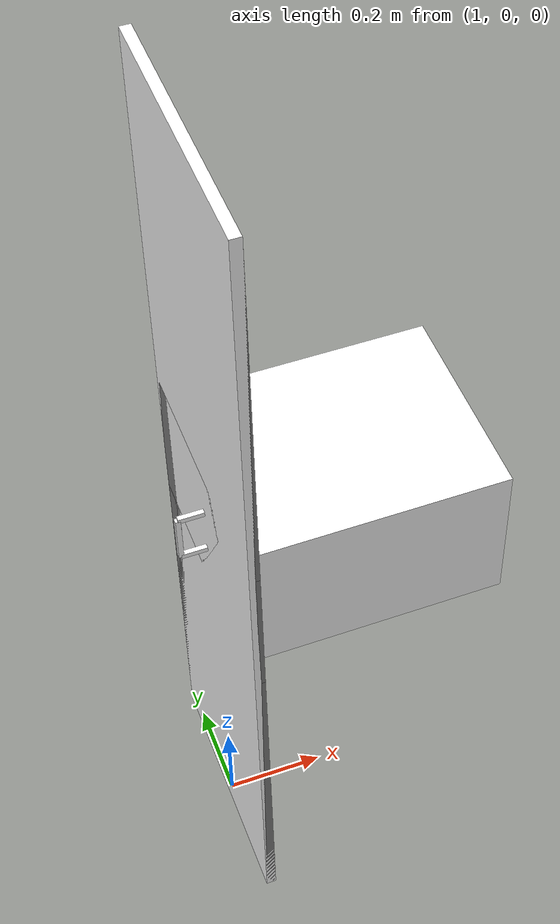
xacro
<?xml version="1.0"?>
<robot xmlns:xacro="http://www.ros.org/wiki/xacro" name="cube">

    <xacro:property name="mass_cube" value="0.5"/>
    <xacro:property name="dimension_cube" value="0.3"/>

    <link name="world"/>

    <joint name="world_wall" type="fixed">
        <parent link="world"/>
        <child link="wall"/>
        <origin rpy="0 0 0" xyz="1.0 0.0 0.9"/>
    </joint>

    <link name="wall">
        <visual>
            <origin rpy="0 0 0" xyz="0 0 0"/>
            <geometry>
                <box size="0.02 0.5 1.8"/>
            </geometry>
            <material name="">
                <color rgba="1 1 1 0.0"/>
            </material>
        </visual>
    </link>

    <joint name="wall_wall_down" type="fixed">
        <parent link="wall"/>
        <child link="wall_down"/>
        <origin rpy="0 0 0" xyz="0.0 0.0 -0.525"/>
    </joint>

    <link name="wall_down">
        <collision>
            <origin rpy="0 0 0" xyz="0 0 0.0"/>
            <geometry>
                <box size="0.02 0.5 0.75"/>
            </geometry>
        </collision>
        <visual>
            <origin rpy="0 0 0" xyz="0 0 0"/>
            <geometry>
                <box size="0.02 0.5 0.75"/>
            </geometry>
            <material name="">
                <color rgba="0.5 0.5 0.5 1"/>
            </material>
        </visual>
    </link>

    <joint name="wall_wall_top" type="fixed">
        <parent link="wall"/>
        <child link="wall_top"/>
        <origin rpy="0 0 0" xyz="0.0 0.0 0.525"/>
    </joint>

    <link name="wall_top">
        <collision>
            <origin rpy="0 0 0" xyz="0 0 0.0"/>
            <geometry>
                <box size="0.02 0.5 0.75"/>
            </geometry>
        </collision>
        <visual>
            <origin rpy="0 0 0" xyz="0 0 0"/>
            <geometry>
                <box size="0.02 0.5 0.75"/>
            </geometry>
            <material name="">
                <color rgba="0.5 0.5 0.5 1"/>
            </material>
        </visual>
    </link>

    <joint name="wall_wall_left" type="fixed">
        <parent link="wall"/>
        <child link="wall_left"/>
        <origin rpy="0 0 0" xyz="0.0 -0.225 0.0"/>
    </joint>

    <link name="wall_left">
        <collision>
            <origin rpy="0 0 0" xyz="0 0 0.0"/>
            <geometry>
                <box size="0.02 0.05 0.3"/>
            </geometry>
        </collision>
        <visual>
            <origin rpy="0 0 0" xyz="0 0 0"/>
            <geometry>
                <box size="0.02 0.05 0.3"/>
            </geometry>
            <material name="">
                <color rgba="0.5 0.5 0.5 1"/>
            </material>
        </visual>
    </link>

    <joint name="wall_wall_right" type="fixed">
        <parent link="wall"/>
        <child link="wall_right"/>
        <origin rpy="0 0 0" xyz="0.0 0.225 0.0"/>
    </joint>

    <link name="wall_right">
        <collision>
            <origin rpy="0 0 0" xyz="0 0 0.0"/>
            <geometry>
                <box size="0.02 0.05 0.3"/>
            </geometry>
        </collision>
        <visual>
            <origin rpy="0 0 0" xyz="0 0 0"/>
            <geometry>
                <box size="0.02 0.05 0.3"/>
            </geometry>
            <material name="">
                <color rgba="0.5 0.5 0.5 1"/>
            </material>
        </visual>
    </link>

    <joint name="articulation_joint" type="prismatic">
        <parent link="wall"/>
        <child link="drawer"/>
        <origin rpy="0 0 0" xyz="0.24 0.0 0.0"/>
        <axis xyz="1 0 0"/>
        <limit effort="1000.0" velocity="5.0" lower="-0.5" upper="0.0"/>
        <dynamics spring_mount="0 0 0" stiffness="0.0" damping="0.5"/>
    </joint>

    <link name="drawer">
        <inertial>
            <mass value="2.0"/>
            <origin rpy="0 0 0" xyz="0 0 0"/>
            <inertia ixx="0.12" ixy="0" ixz="0" iyy="0.14" iyz="0" izz="0.18"/>
        </inertial>
        <collision>
            <origin rpy="0 0 0" xyz="0 0 0.0"/>
            <geometry>
                <box size="0.5 0.4 0.3"/>
            </geometry>
        </collision>
        <visual>
            <origin rpy="0 0 0" xyz="0 0 0"/>
            <geometry>
                <box size="0.5 0.4 0.3"/>
            </geometry>
            <material name="">
                <color rgba="1 1 1 1"/>
            </material>
        </visual>
    </link>

    <joint name="drawer_handle" type="fixed">
        <parent link="drawer"/>
        <child link="handle"/>
        <origin rpy="1.5708 0 0" xyz="-0.3 0.0 0.0"/>
    </joint>

    <link name="handle">
        <collision>
            <origin rpy="0 0 0" xyz="0 0 0.0"/>
            <geometry>
                <box size="0.01 0.1 0.01"/>
            </geometry>
            <material name="">
                <contact name="rubber"/>
            </material>
        </collision>
        <visual>
            <origin rpy="0 0 0" xyz="0 0 0"/>
            <geometry>
                <box size="0.01 0.1 0.01"/>
            </geometry>
            <material name="">
                <color rgba="1 1 1 1"/>
            </material>
        </visual>
    </link>

    <joint name="handle_left" type="fixed">
        <parent link="handle"/>
        <child link="left"/>
        <origin rpy="0 0 0" xyz="0.05 0.05 0.0"/>
    </joint>

    <link name="left">
        <collision>
            <origin rpy="0 0 0" xyz="0 0 0.0"/>
            <geometry>
                <box size="0.1 0.01 0.01"/>
            </geometry>
            <material name="">
                <contact name="rubber"/>
            </material>
        </collision>
        <visual>
            <origin rpy="0 0 0" xyz="0 0 0"/>
            <geometry>
                <box size="0.1 0.01 0.01"/>
            </geometry>
            <material name="">
                <color rgba="1 1 1 1"/>
            </material>
        </visual>
    </link>

    <joint name="handle_right" type="fixed">
        <parent link="handle"/>
        <child link="right"/>
        <origin rpy="0 0 0" xyz="0.05 -0.05 0.0"/>
    </joint>

    <link name="right">
        <collision>
            <origin rpy="0 0 0" xyz="0 0 0.0"/>
            <geometry>
                <box size="0.1 0.01 0.01"/>
            </geometry>
            <material name="">
                <contact name="rubber"/>
            </material>
        </collision>
        <visual>
            <origin rpy="0 0 0" xyz="0 0 0"/>
            <geometry>
                <box size="0.1 0.01 0.01"/>
            </geometry>
            <material name="">
                <color rgba="1 1 1 1"/>
            </material>
        </visual>
    </link>

</robot>
